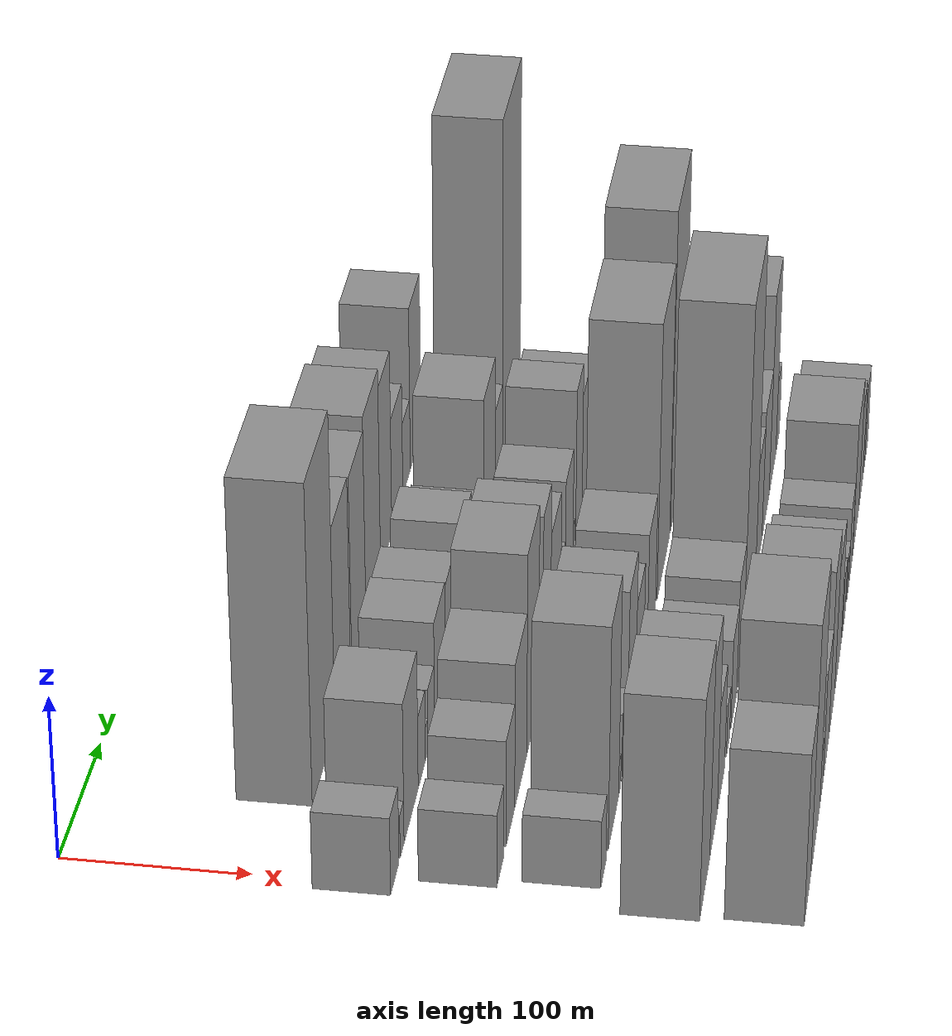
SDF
<sdf version="1.6">
 <world name="default">
  <model name="building_27">
   <static>1</static>
   <pose>100.0000 95.9631 0 0.000000 0.000000 0.000000</pose>
   <link name="link">
    <pose>0 0 99.00 0 0 0</pose>
    <collision name="collision"><geometry><box><size>40.0000 69.5549 198.0000</size></box></geometry></collision>
    <visual name="visual">
     <cast_shadows>0</cast_shadows>
     <geometry><box><size>40.0000 69.5549 198.0000</size></box></geometry>
     <material>
      <script>
       <uri>model://grey_wall/materials/scripts</uri>
       <uri>model://grey_wall/materials/textures</uri>
       <name>vrc/grey_wall</name>
      </script>
     </material>
    </visual>
   </link>
  </model>
  <model name="building_28">
   <static>1</static>
   <pose>100.0000 155.8747 0 0.000000 0.000000 0.000000</pose>
   <link name="link">
    <pose>0 0 63.00 0 0 0</pose>
    <collision name="collision"><geometry><box><size>40.0000 50.2684 126.0000</size></box></geometry></collision>
    <visual name="visual">
     <cast_shadows>0</cast_shadows>
     <geometry><box><size>40.0000 50.2684 126.0000</size></box></geometry>
     <material>
      <script>
       <uri>model://grey_wall/materials/scripts</uri>
       <uri>model://grey_wall/materials/textures</uri>
       <name>vrc/grey_wall</name>
      </script>
     </material>
    </visual>
   </link>
  </model>
  <model name="building_29">
   <static>1</static>
   <pose>100.0000 208.4547 0 0.000000 0.000000 0.000000</pose>
   <link name="link">
    <pose>0 0 61.50 0 0 0</pose>
    <collision name="collision"><geometry><box><size>40.0000 46.8915 123.0000</size></box></geometry></collision>
    <visual name="visual">
     <cast_shadows>0</cast_shadows>
     <geometry><box><size>40.0000 46.8915 123.0000</size></box></geometry>
     <material>
      <script>
       <uri>model://grey_wall/materials/scripts</uri>
       <uri>model://grey_wall/materials/textures</uri>
       <name>vrc/grey_wall</name>
      </script>
     </material>
    </visual>
   </link>
  </model>
  <model name="building_30">
   <static>1</static>
   <pose>100.0000 256.9549 0 0.000000 0.000000 0.000000</pose>
   <link name="link">
    <pose>0 0 66.00 0 0 0</pose>
    <collision name="collision"><geometry><box><size>40.0000 50.1088 132.0000</size></box></geometry></collision>
    <visual name="visual">
     <cast_shadows>0</cast_shadows>
     <geometry><box><size>40.0000 50.1088 132.0000</size></box></geometry>
     <material>
      <script>
       <uri>model://grey_wall/materials/scripts</uri>
       <uri>model://grey_wall/materials/textures</uri>
       <name>vrc/grey_wall</name>
      </script>
     </material>
    </visual>
   </link>
  </model>
  <model name="building_31">
   <static>1</static>
   <pose>100.0000 301.8490 0 0.000000 0.000000 0.000000</pose>
   <link name="link">
    <pose>0 0 60.00 0 0 0</pose>
    <collision name="collision"><geometry><box><size>40.0000 39.6795 120.0000</size></box></geometry></collision>
    <visual name="visual">
     <cast_shadows>0</cast_shadows>
     <geometry><box><size>40.0000 39.6795 120.0000</size></box></geometry>
     <material>
      <script>
       <uri>model://grey_wall/materials/scripts</uri>
       <uri>model://grey_wall/materials/textures</uri>
       <name>vrc/grey_wall</name>
      </script>
     </material>
    </visual>
   </link>
  </model>
  <model name="building_32">
   <static>1</static>
   <pose>100.0000 341.5199 0 0.000000 0.000000 0.000000</pose>
   <link name="link">
    <pose>0 0 37.50 0 0 0</pose>
    <collision name="collision"><geometry><box><size>40.0000 39.6623 75.0000</size></box></geometry></collision>
    <visual name="visual">
     <cast_shadows>0</cast_shadows>
     <geometry><box><size>40.0000 39.6623 75.0000</size></box></geometry>
     <material>
      <script>
       <uri>model://grey_wall/materials/scripts</uri>
       <uri>model://grey_wall/materials/textures</uri>
       <name>vrc/grey_wall</name>
      </script>
     </material>
    </visual>
   </link>
  </model>
  <model name="building_33">
   <static>1</static>
   <pose>100.0000 375.2627 0 0.000000 0.000000 0.000000</pose>
   <link name="link">
    <pose>0 0 24.00 0 0 0</pose>
    <collision name="collision"><geometry><box><size>40.0000 27.8233 48.0000</size></box></geometry></collision>
    <visual name="visual">
     <cast_shadows>0</cast_shadows>
     <geometry><box><size>40.0000 27.8233 48.0000</size></box></geometry>
     <material>
      <script>
       <uri>model://grey_wall/materials/scripts</uri>
       <uri>model://grey_wall/materials/textures</uri>
       <name>vrc/grey_wall</name>
      </script>
     </material>
    </visual>
   </link>
  </model>
  <model name="building_34">
   <static>1</static>
   <pose>100.0000 409.2734 0 0.000000 0.000000 0.000000</pose>
   <link name="link">
    <pose>0 0 54.00 0 0 0</pose>
    <collision name="collision"><geometry><box><size>40.0000 40.1979 108.0000</size></box></geometry></collision>
    <visual name="visual">
     <cast_shadows>0</cast_shadows>
     <geometry><box><size>40.0000 40.1979 108.0000</size></box></geometry>
     <material>
      <script>
       <uri>model://grey_wall/materials/scripts</uri>
       <uri>model://grey_wall/materials/textures</uri>
       <name>vrc/grey_wall</name>
      </script>
     </material>
    </visual>
   </link>
  </model>
  <model name="building_35">
   <static>1</static>
   <pose>100.0000 438.1028 0 0.000000 0.000000 0.000000</pose>
   <link name="link">
    <pose>0 0 13.50 0 0 0</pose>
    <collision name="collision"><geometry><box><size>40.0000 11.4611 27.0000</size></box></geometry></collision>
    <visual name="visual">
     <cast_shadows>0</cast_shadows>
     <geometry><box><size>40.0000 11.4611 27.0000</size></box></geometry>
     <material>
      <script>
       <uri>model://grey_wall/materials/scripts</uri>
       <uri>model://grey_wall/materials/textures</uri>
       <name>vrc/grey_wall</name>
      </script>
     </material>
    </visual>
   </link>
  </model>
  <model name="building_71">
   <static>1</static>
   <pose>152.0000 6.1775 0 0.000000 0.000000 0.000000</pose>
   <link name="link">
    <pose>0 0 24.00 0 0 0</pose>
    <collision name="collision"><geometry><box><size>40.0000 26.8352 48.0000</size></box></geometry></collision>
    <visual name="visual">
     <cast_shadows>0</cast_shadows>
     <geometry><box><size>40.0000 26.8352 48.0000</size></box></geometry>
     <material>
      <script>
       <uri>model://grey_wall/materials/scripts</uri>
       <uri>model://grey_wall/materials/textures</uri>
       <name>vrc/grey_wall</name>
      </script>
     </material>
    </visual>
   </link>
  </model>
  <model name="building_72">
   <static>1</static>
   <pose>152.0000 29.9495 0 0.000000 0.000000 0.000000</pose>
   <link name="link">
    <pose>0 0 13.50 0 0 0</pose>
    <collision name="collision"><geometry><box><size>40.0000 12.7089 27.0000</size></box></geometry></collision>
    <visual name="visual">
     <cast_shadows>0</cast_shadows>
     <geometry><box><size>40.0000 12.7089 27.0000</size></box></geometry>
     <material>
      <script>
       <uri>model://grey_wall/materials/scripts</uri>
       <uri>model://grey_wall/materials/textures</uri>
       <name>vrc/grey_wall</name>
      </script>
     </material>
    </visual>
   </link>
  </model>
  <model name="building_73">
   <static>1</static>
   <pose>152.0000 59.8912 0 0.000000 0.000000 0.000000</pose>
   <link name="link">
    <pose>0 0 43.50 0 0 0</pose>
    <collision name="collision"><geometry><box><size>40.0000 47.1745 87.0000</size></box></geometry></collision>
    <visual name="visual">
     <cast_shadows>0</cast_shadows>
     <geometry><box><size>40.0000 47.1745 87.0000</size></box></geometry>
     <material>
      <script>
       <uri>model://grey_wall/materials/scripts</uri>
       <uri>model://grey_wall/materials/textures</uri>
       <name>vrc/grey_wall</name>
      </script>
     </material>
    </visual>
   </link>
  </model>
  <model name="building_74">
   <static>1</static>
   <pose>152.0000 95.9949 0 0.000000 0.000000 0.000000</pose>
   <link name="link">
    <pose>0 0 22.50 0 0 0</pose>
    <collision name="collision"><geometry><box><size>40.0000 25.0328 45.0000</size></box></geometry></collision>
    <visual name="visual">
     <cast_shadows>0</cast_shadows>
     <geometry><box><size>40.0000 25.0328 45.0000</size></box></geometry>
     <material>
      <script>
       <uri>model://grey_wall/materials/scripts</uri>
       <uri>model://grey_wall/materials/textures</uri>
       <name>vrc/grey_wall</name>
      </script>
     </material>
    </visual>
   </link>
  </model>
  <model name="building_75">
   <static>1</static>
   <pose>152.0000 112.9898 0 0.000000 0.000000 0.000000</pose>
   <link name="link">
    <pose>0 0 10.50 0 0 0</pose>
    <collision name="collision"><geometry><box><size>40.0000 8.9571 21.0000</size></box></geometry></collision>
    <visual name="visual">
     <cast_shadows>0</cast_shadows>
     <geometry><box><size>40.0000 8.9571 21.0000</size></box></geometry>
     <material>
      <script>
       <uri>model://grey_wall/materials/scripts</uri>
       <uri>model://grey_wall/materials/textures</uri>
       <name>vrc/grey_wall</name>
      </script>
     </material>
    </visual>
   </link>
  </model>
  <model name="building_76">
   <static>1</static>
   <pose>152.0000 128.7199 0 0.000000 0.000000 0.000000</pose>
   <link name="link">
    <pose>0 0 19.50 0 0 0</pose>
    <collision name="collision"><geometry><box><size>40.0000 22.5031 39.0000</size></box></geometry></collision>
    <visual name="visual">
     <cast_shadows>0</cast_shadows>
     <geometry><box><size>40.0000 22.5031 39.0000</size></box></geometry>
     <material>
      <script>
       <uri>model://grey_wall/materials/scripts</uri>
       <uri>model://grey_wall/materials/textures</uri>
       <name>vrc/grey_wall</name>
      </script>
     </material>
    </visual>
   </link>
  </model>
  <model name="building_77">
   <static>1</static>
   <pose>152.0000 159.2453 0 0.000000 0.000000 0.000000</pose>
   <link name="link">
    <pose>0 0 33.00 0 0 0</pose>
    <collision name="collision"><geometry><box><size>40.0000 38.5477 66.0000</size></box></geometry></collision>
    <visual name="visual">
     <cast_shadows>0</cast_shadows>
     <geometry><box><size>40.0000 38.5477 66.0000</size></box></geometry>
     <material>
      <script>
       <uri>model://grey_wall/materials/scripts</uri>
       <uri>model://grey_wall/materials/textures</uri>
       <name>vrc/grey_wall</name>
      </script>
     </material>
    </visual>
   </link>
  </model>
  <model name="building_78">
   <static>1</static>
   <pose>152.0000 195.8026 0 0.000000 0.000000 0.000000</pose>
   <link name="link">
    <pose>0 0 31.50 0 0 0</pose>
    <collision name="collision"><geometry><box><size>40.0000 34.5670 63.0000</size></box></geometry></collision>
    <visual name="visual">
     <cast_shadows>0</cast_shadows>
     <geometry><box><size>40.0000 34.5670 63.0000</size></box></geometry>
     <material>
      <script>
       <uri>model://grey_wall/materials/scripts</uri>
       <uri>model://grey_wall/materials/textures</uri>
       <name>vrc/grey_wall</name>
      </script>
     </material>
    </visual>
   </link>
  </model>
  <model name="building_79">
   <static>1</static>
   <pose>152.0000 224.5980 0 0.000000 0.000000 0.000000</pose>
   <link name="link">
    <pose>0 0 19.50 0 0 0</pose>
    <collision name="collision"><geometry><box><size>40.0000 23.0237 39.0000</size></box></geometry></collision>
    <visual name="visual">
     <cast_shadows>0</cast_shadows>
     <geometry><box><size>40.0000 23.0237 39.0000</size></box></geometry>
     <material>
      <script>
       <uri>model://grey_wall/materials/scripts</uri>
       <uri>model://grey_wall/materials/textures</uri>
       <name>vrc/grey_wall</name>
      </script>
     </material>
    </visual>
   </link>
  </model>
  <model name="building_80">
   <static>1</static>
   <pose>152.0000 261.7956 0 0.000000 0.000000 0.000000</pose>
   <link name="link">
    <pose>0 0 30.00 0 0 0</pose>
    <collision name="collision"><geometry><box><size>40.0000 33.3714 60.0000</size></box></geometry></collision>
    <visual name="visual">
     <cast_shadows>0</cast_shadows>
     <geometry><box><size>40.0000 33.3714 60.0000</size></box></geometry>
     <material>
      <script>
       <uri>model://grey_wall/materials/scripts</uri>
       <uri>model://grey_wall/materials/textures</uri>
       <name>vrc/grey_wall</name>
      </script>
     </material>
    </visual>
   </link>
  </model>
  <model name="building_81">
   <static>1</static>
   <pose>152.0000 289.0990 0 0.000000 0.000000 0.000000</pose>
   <link name="link">
    <pose>0 0 10.50 0 0 0</pose>
    <collision name="collision"><geometry><box><size>40.0000 9.2353 21.0000</size></box></geometry></collision>
    <visual name="visual">
     <cast_shadows>0</cast_shadows>
     <geometry><box><size>40.0000 9.2353 21.0000</size></box></geometry>
     <material>
      <script>
       <uri>model://grey_wall/materials/scripts</uri>
       <uri>model://grey_wall/materials/textures</uri>
       <name>vrc/grey_wall</name>
      </script>
     </material>
    </visual>
   </link>
  </model>
  <model name="building_82">
   <static>1</static>
   <pose>152.0000 307.6373 0 0.000000 0.000000 0.000000</pose>
   <link name="link">
    <pose>0 0 18.00 0 0 0</pose>
    <collision name="collision"><geometry><box><size>40.0000 19.8414 36.0000</size></box></geometry></collision>
    <visual name="visual">
     <cast_shadows>0</cast_shadows>
     <geometry><box><size>40.0000 19.8414 36.0000</size></box></geometry>
     <material>
      <script>
       <uri>model://grey_wall/materials/scripts</uri>
       <uri>model://grey_wall/materials/textures</uri>
       <name>vrc/grey_wall</name>
      </script>
     </material>
    </visual>
   </link>
  </model>
  <model name="building_83">
   <static>1</static>
   <pose>152.0000 349.2257 0 0.000000 0.000000 0.000000</pose>
   <link name="link">
    <pose>0 0 45.00 0 0 0</pose>
    <collision name="collision"><geometry><box><size>40.0000 47.3353 90.0000</size></box></geometry></collision>
    <visual name="visual">
     <cast_shadows>0</cast_shadows>
     <geometry><box><size>40.0000 47.3353 90.0000</size></box></geometry>
     <material>
      <script>
       <uri>model://grey_wall/materials/scripts</uri>
       <uri>model://grey_wall/materials/textures</uri>
       <name>vrc/grey_wall</name>
      </script>
     </material>
    </visual>
   </link>
  </model>
  <model name="building_84">
   <static>1</static>
   <pose>152.0000 388.0478 0 0.000000 0.000000 0.000000</pose>
   <link name="link">
    <pose>0 0 27.00 0 0 0</pose>
    <collision name="collision"><geometry><box><size>40.0000 30.3090 54.0000</size></box></geometry></collision>
    <visual name="visual">
     <cast_shadows>0</cast_shadows>
     <geometry><box><size>40.0000 30.3090 54.0000</size></box></geometry>
     <material>
      <script>
       <uri>model://grey_wall/materials/scripts</uri>
       <uri>model://grey_wall/materials/textures</uri>
       <name>vrc/grey_wall</name>
      </script>
     </material>
    </visual>
   </link>
  </model>
  <model name="building_85">
   <static>1</static>
   <pose>152.0000 441.4528 0 0.000000 0.000000 0.000000</pose>
   <link name="link">
    <pose>0 0 112.50 0 0 0</pose>
    <collision name="collision"><geometry><box><size>40.0000 76.5010 225.0000</size></box></geometry></collision>
    <visual name="visual">
     <cast_shadows>0</cast_shadows>
     <geometry><box><size>40.0000 76.5010 225.0000</size></box></geometry>
     <material>
      <script>
       <uri>model://grey_wall/materials/scripts</uri>
       <uri>model://grey_wall/materials/textures</uri>
       <name>vrc/grey_wall</name>
      </script>
     </material>
    </visual>
   </link>
  </model>
  <model name="building_125">
   <static>1</static>
   <pose>204.0000 19.5991 0 0.000000 0.000000 0.000000</pose>
   <link name="link">
    <pose>0 0 22.50 0 0 0</pose>
    <collision name="collision"><geometry><box><size>40.0000 26.1859 45.0000</size></box></geometry></collision>
    <visual name="visual">
     <cast_shadows>0</cast_shadows>
     <geometry><box><size>40.0000 26.1859 45.0000</size></box></geometry>
     <material>
      <script>
       <uri>model://grey_wall/materials/scripts</uri>
       <uri>model://grey_wall/materials/textures</uri>
       <name>vrc/grey_wall</name>
      </script>
     </material>
    </visual>
   </link>
  </model>
  <model name="building_126">
   <static>1</static>
   <pose>204.0000 57.2526 0 0.000000 0.000000 0.000000</pose>
   <link name="link">
    <pose>0 0 33.00 0 0 0</pose>
    <collision name="collision"><geometry><box><size>40.0000 33.1210 66.0000</size></box></geometry></collision>
    <visual name="visual">
     <cast_shadows>0</cast_shadows>
     <geometry><box><size>40.0000 33.1210 66.0000</size></box></geometry>
     <material>
      <script>
       <uri>model://grey_wall/materials/scripts</uri>
       <uri>model://grey_wall/materials/textures</uri>
       <name>vrc/grey_wall</name>
      </script>
     </material>
    </visual>
   </link>
  </model>
  <model name="building_127">
   <static>1</static>
   <pose>204.0000 97.2306 0 0.000000 0.000000 0.000000</pose>
   <link name="link">
    <pose>0 0 45.00 0 0 0</pose>
    <collision name="collision"><geometry><box><size>40.0000 46.8351 90.0000</size></box></geometry></collision>
    <visual name="visual">
     <cast_shadows>0</cast_shadows>
     <geometry><box><size>40.0000 46.8351 90.0000</size></box></geometry>
     <material>
      <script>
       <uri>model://grey_wall/materials/scripts</uri>
       <uri>model://grey_wall/materials/textures</uri>
       <name>vrc/grey_wall</name>
      </script>
     </material>
    </visual>
   </link>
  </model>
  <model name="building_128">
   <static>1</static>
   <pose>204.0000 144.5070 0 0.000000 0.000000 0.000000</pose>
   <link name="link">
    <pose>0 0 63.00 0 0 0</pose>
    <collision name="collision"><geometry><box><size>40.0000 47.7177 126.0000</size></box></geometry></collision>
    <visual name="visual">
     <cast_shadows>0</cast_shadows>
     <geometry><box><size>40.0000 47.7177 126.0000</size></box></geometry>
     <material>
      <script>
       <uri>model://grey_wall/materials/scripts</uri>
       <uri>model://grey_wall/materials/textures</uri>
       <name>vrc/grey_wall</name>
      </script>
     </material>
    </visual>
   </link>
  </model>
  <model name="building_129">
   <static>1</static>
   <pose>204.0000 178.7596 0 0.000000 0.000000 0.000000</pose>
   <link name="link">
    <pose>0 0 13.50 0 0 0</pose>
    <collision name="collision"><geometry><box><size>40.0000 12.7875 27.0000</size></box></geometry></collision>
    <visual name="visual">
     <cast_shadows>0</cast_shadows>
     <geometry><box><size>40.0000 12.7875 27.0000</size></box></geometry>
     <material>
      <script>
       <uri>model://grey_wall/materials/scripts</uri>
       <uri>model://grey_wall/materials/textures</uri>
       <name>vrc/grey_wall</name>
      </script>
     </material>
    </visual>
   </link>
  </model>
  <model name="building_130">
   <static>1</static>
   <pose>204.0000 201.4827 0 0.000000 0.000000 0.000000</pose>
   <link name="link">
    <pose>0 0 54.00 0 0 0</pose>
    <collision name="collision"><geometry><box><size>40.0000 32.6587 108.0000</size></box></geometry></collision>
    <visual name="visual">
     <cast_shadows>0</cast_shadows>
     <geometry><box><size>40.0000 32.6587 108.0000</size></box></geometry>
     <material>
      <script>
       <uri>model://grey_wall/materials/scripts</uri>
       <uri>model://grey_wall/materials/textures</uri>
       <name>vrc/grey_wall</name>
      </script>
     </material>
    </visual>
   </link>
  </model>
  <model name="building_131">
   <static>1</static>
   <pose>204.0000 239.6755 0 0.000000 0.000000 0.000000</pose>
   <link name="link">
    <pose>0 0 37.50 0 0 0</pose>
    <collision name="collision"><geometry><box><size>40.0000 43.7267 75.0000</size></box></geometry></collision>
    <visual name="visual">
     <cast_shadows>0</cast_shadows>
     <geometry><box><size>40.0000 43.7267 75.0000</size></box></geometry>
     <material>
      <script>
       <uri>model://grey_wall/materials/scripts</uri>
       <uri>model://grey_wall/materials/textures</uri>
       <name>vrc/grey_wall</name>
      </script>
     </material>
    </visual>
   </link>
  </model>
  <model name="building_132">
   <static>1</static>
   <pose>204.0000 273.3717 0 0.000000 0.000000 0.000000</pose>
   <link name="link">
    <pose>0 0 15.00 0 0 0</pose>
    <collision name="collision"><geometry><box><size>40.0000 15.6657 30.0000</size></box></geometry></collision>
    <visual name="visual">
     <cast_shadows>0</cast_shadows>
     <geometry><box><size>40.0000 15.6657 30.0000</size></box></geometry>
     <material>
      <script>
       <uri>model://grey_wall/materials/scripts</uri>
       <uri>model://grey_wall/materials/textures</uri>
       <name>vrc/grey_wall</name>
      </script>
     </material>
    </visual>
   </link>
  </model>
  <model name="building_133">
   <static>1</static>
   <pose>204.0000 298.4647 0 0.000000 0.000000 0.000000</pose>
   <link name="link">
    <pose>0 0 34.50 0 0 0</pose>
    <collision name="collision"><geometry><box><size>40.0000 34.5203 69.0000</size></box></geometry></collision>
    <visual name="visual">
     <cast_shadows>0</cast_shadows>
     <geometry><box><size>40.0000 34.5203 69.0000</size></box></geometry>
     <material>
      <script>
       <uri>model://grey_wall/materials/scripts</uri>
       <uri>model://grey_wall/materials/textures</uri>
       <name>vrc/grey_wall</name>
      </script>
     </material>
    </visual>
   </link>
  </model>
  <model name="building_134">
   <static>1</static>
   <pose>204.0000 319.7799 0 0.000000 0.000000 0.000000</pose>
   <link name="link">
    <pose>0 0 9.00 0 0 0</pose>
    <collision name="collision"><geometry><box><size>40.0000 8.1100 18.0000</size></box></geometry></collision>
    <visual name="visual">
     <cast_shadows>0</cast_shadows>
     <geometry><box><size>40.0000 8.1100 18.0000</size></box></geometry>
     <material>
      <script>
       <uri>model://grey_wall/materials/scripts</uri>
       <uri>model://grey_wall/materials/textures</uri>
       <name>vrc/grey_wall</name>
      </script>
     </material>
    </visual>
   </link>
  </model>
  <model name="building_135">
   <static>1</static>
   <pose>204.0000 342.7902 0 0.000000 0.000000 0.000000</pose>
   <link name="link">
    <pose>0 0 49.50 0 0 0</pose>
    <collision name="collision"><geometry><box><size>40.0000 29.9105 99.0000</size></box></geometry></collision>
    <visual name="visual">
     <cast_shadows>0</cast_shadows>
     <geometry><box><size>40.0000 29.9105 99.0000</size></box></geometry>
     <material>
      <script>
       <uri>model://grey_wall/materials/scripts</uri>
       <uri>model://grey_wall/materials/textures</uri>
       <name>vrc/grey_wall</name>
      </script>
     </material>
    </visual>
   </link>
  </model>
  <model name="building_136">
   <static>1</static>
   <pose>204.0000 380.8406 0 0.000000 0.000000 0.000000</pose>
   <link name="link">
    <pose>0 0 39.00 0 0 0</pose>
    <collision name="collision"><geometry><box><size>40.0000 46.1903 78.0000</size></box></geometry></collision>
    <visual name="visual">
     <cast_shadows>0</cast_shadows>
     <geometry><box><size>40.0000 46.1903 78.0000</size></box></geometry>
     <material>
      <script>
       <uri>model://grey_wall/materials/scripts</uri>
       <uri>model://grey_wall/materials/textures</uri>
       <name>vrc/grey_wall</name>
      </script>
     </material>
    </visual>
   </link>
  </model>
  <model name="building_137">
   <static>1</static>
   <pose>204.0000 422.7419 0 0.000000 0.000000 0.000000</pose>
   <link name="link">
    <pose>0 0 19.50 0 0 0</pose>
    <collision name="collision"><geometry><box><size>40.0000 19.6123 39.0000</size></box></geometry></collision>
    <visual name="visual">
     <cast_shadows>0</cast_shadows>
     <geometry><box><size>40.0000 19.6123 39.0000</size></box></geometry>
     <material>
      <script>
       <uri>model://grey_wall/materials/scripts</uri>
       <uri>model://grey_wall/materials/textures</uri>
       <name>vrc/grey_wall</name>
      </script>
     </material>
    </visual>
   </link>
  </model>
  <model name="building_171">
   <static>1</static>
   <pose>256.0000 24.4122 0 0.000000 0.000000 0.000000</pose>
   <link name="link">
    <pose>0 0 21.00 0 0 0</pose>
    <collision name="collision"><geometry><box><size>40.0000 22.5740 42.0000</size></box></geometry></collision>
    <visual name="visual">
     <cast_shadows>0</cast_shadows>
     <geometry><box><size>40.0000 22.5740 42.0000</size></box></geometry>
     <material>
      <script>
       <uri>model://grey_wall/materials/scripts</uri>
       <uri>model://grey_wall/materials/textures</uri>
       <name>vrc/grey_wall</name>
      </script>
     </material>
    </visual>
   </link>
  </model>
  <model name="building_172">
   <static>1</static>
   <pose>256.0000 68.0506 0 0.000000 0.000000 0.000000</pose>
   <link name="link">
    <pose>0 0 69.00 0 0 0</pose>
    <collision name="collision"><geometry><box><size>40.0000 46.7029 138.0000</size></box></geometry></collision>
    <visual name="visual">
     <cast_shadows>0</cast_shadows>
     <geometry><box><size>40.0000 46.7029 138.0000</size></box></geometry>
     <material>
      <script>
       <uri>model://grey_wall/materials/scripts</uri>
       <uri>model://grey_wall/materials/textures</uri>
       <name>vrc/grey_wall</name>
      </script>
     </material>
    </visual>
   </link>
  </model>
  <model name="building_173">
   <static>1</static>
   <pose>256.0000 95.7640 0 0.000000 0.000000 0.000000</pose>
   <link name="link">
    <pose>0 0 10.50 0 0 0</pose>
    <collision name="collision"><geometry><box><size>40.0000 8.7239 21.0000</size></box></geometry></collision>
    <visual name="visual">
     <cast_shadows>0</cast_shadows>
     <geometry><box><size>40.0000 8.7239 21.0000</size></box></geometry>
     <material>
      <script>
       <uri>model://grey_wall/materials/scripts</uri>
       <uri>model://grey_wall/materials/textures</uri>
       <name>vrc/grey_wall</name>
      </script>
     </material>
    </visual>
   </link>
  </model>
  <model name="building_174">
   <static>1</static>
   <pose>256.0000 117.5075 0 0.000000 0.000000 0.000000</pose>
   <link name="link">
    <pose>0 0 21.00 0 0 0</pose>
    <collision name="collision"><geometry><box><size>40.0000 24.7632 42.0000</size></box></geometry></collision>
    <visual name="visual">
     <cast_shadows>0</cast_shadows>
     <geometry><box><size>40.0000 24.7632 42.0000</size></box></geometry>
     <material>
      <script>
       <uri>model://grey_wall/materials/scripts</uri>
       <uri>model://grey_wall/materials/textures</uri>
       <name>vrc/grey_wall</name>
      </script>
     </material>
    </visual>
   </link>
  </model>
  <model name="building_175">
   <static>1</static>
   <pose>256.0000 149.0656 0 0.000000 0.000000 0.000000</pose>
   <link name="link">
    <pose>0 0 51.00 0 0 0</pose>
    <collision name="collision"><geometry><box><size>40.0000 38.3529 102.0000</size></box></geometry></collision>
    <visual name="visual">
     <cast_shadows>0</cast_shadows>
     <geometry><box><size>40.0000 38.3529 102.0000</size></box></geometry>
     <material>
      <script>
       <uri>model://grey_wall/materials/scripts</uri>
       <uri>model://grey_wall/materials/textures</uri>
       <name>vrc/grey_wall</name>
      </script>
     </material>
    </visual>
   </link>
  </model>
  <model name="building_176">
   <static>1</static>
   <pose>256.0000 187.8354 0 0.000000 0.000000 0.000000</pose>
   <link name="link">
    <pose>0 0 34.50 0 0 0</pose>
    <collision name="collision"><geometry><box><size>40.0000 39.1867 69.0000</size></box></geometry></collision>
    <visual name="visual">
     <cast_shadows>0</cast_shadows>
     <geometry><box><size>40.0000 39.1867 69.0000</size></box></geometry>
     <material>
      <script>
       <uri>model://grey_wall/materials/scripts</uri>
       <uri>model://grey_wall/materials/textures</uri>
       <name>vrc/grey_wall</name>
      </script>
     </material>
    </visual>
   </link>
  </model>
  <model name="building_177">
   <static>1</static>
   <pose>256.0000 216.4188 0 0.000000 0.000000 0.000000</pose>
   <link name="link">
    <pose>0 0 13.50 0 0 0</pose>
    <collision name="collision"><geometry><box><size>40.0000 11.9801 27.0000</size></box></geometry></collision>
    <visual name="visual">
     <cast_shadows>0</cast_shadows>
     <geometry><box><size>40.0000 11.9801 27.0000</size></box></geometry>
     <material>
      <script>
       <uri>model://grey_wall/materials/scripts</uri>
       <uri>model://grey_wall/materials/textures</uri>
       <name>vrc/grey_wall</name>
      </script>
     </material>
    </visual>
   </link>
  </model>
  <model name="building_178">
   <static>1</static>
   <pose>256.0000 246.1983 0 0.000000 0.000000 0.000000</pose>
   <link name="link">
    <pose>0 0 37.50 0 0 0</pose>
    <collision name="collision"><geometry><box><size>40.0000 41.5788 75.0000</size></box></geometry></collision>
    <visual name="visual">
     <cast_shadows>0</cast_shadows>
     <geometry><box><size>40.0000 41.5788 75.0000</size></box></geometry>
     <material>
      <script>
       <uri>model://grey_wall/materials/scripts</uri>
       <uri>model://grey_wall/materials/textures</uri>
       <name>vrc/grey_wall</name>
      </script>
     </material>
    </visual>
   </link>
  </model>
  <model name="building_179">
   <static>1</static>
   <pose>256.0000 308.0925 0 0.000000 0.000000 0.000000</pose>
   <link name="link">
    <pose>0 0 88.50 0 0 0</pose>
    <collision name="collision"><geometry><box><size>40.0000 66.2096 177.0000</size></box></geometry></collision>
    <visual name="visual">
     <cast_shadows>0</cast_shadows>
     <geometry><box><size>40.0000 66.2096 177.0000</size></box></geometry>
     <material>
      <script>
       <uri>model://grey_wall/materials/scripts</uri>
       <uri>model://grey_wall/materials/textures</uri>
       <name>vrc/grey_wall</name>
      </script>
     </material>
    </visual>
   </link>
  </model>
  <model name="building_180">
   <static>1</static>
   <pose>256.0000 381.2448 0 0.000000 0.000000 0.000000</pose>
   <link name="link">
    <pose>0 0 103.50 0 0 0</pose>
    <collision name="collision"><geometry><box><size>40.0000 72.0952 207.0000</size></box></geometry></collision>
    <visual name="visual">
     <cast_shadows>0</cast_shadows>
     <geometry><box><size>40.0000 72.0952 207.0000</size></box></geometry>
     <material>
      <script>
       <uri>model://grey_wall/materials/scripts</uri>
       <uri>model://grey_wall/materials/textures</uri>
       <name>vrc/grey_wall</name>
      </script>
     </material>
    </visual>
   </link>
  </model>
  <model name="building_181">
   <static>1</static>
   <pose>256.0000 420.8644 0 0.000000 0.000000 0.000000</pose>
   <link name="link">
    <pose>0 0 7.50 0 0 0</pose>
    <collision name="collision"><geometry><box><size>40.0000 7.1439 15.0000</size></box></geometry></collision>
    <visual name="visual">
     <cast_shadows>0</cast_shadows>
     <geometry><box><size>40.0000 7.1439 15.0000</size></box></geometry>
     <material>
      <script>
       <uri>model://grey_wall/materials/scripts</uri>
       <uri>model://grey_wall/materials/textures</uri>
       <name>vrc/grey_wall</name>
      </script>
     </material>
    </visual>
   </link>
  </model>
  <model name="building_182">
   <static>1</static>
   <pose>256.0000 448.9622 0 0.000000 0.000000 0.000000</pose>
   <link name="link">
    <pose>0 0 54.00 0 0 0</pose>
    <collision name="collision"><geometry><box><size>40.0000 37.0516 108.0000</size></box></geometry></collision>
    <visual name="visual">
     <cast_shadows>0</cast_shadows>
     <geometry><box><size>40.0000 37.0516 108.0000</size></box></geometry>
     <material>
      <script>
       <uri>model://grey_wall/materials/scripts</uri>
       <uri>model://grey_wall/materials/textures</uri>
       <name>vrc/grey_wall</name>
      </script>
     </material>
    </visual>
   </link>
  </model>
  <model name="building_223">
   <static>1</static>
   <pose>308.0000 19.2251 0 0.000000 0.000000 0.000000</pose>
   <link name="link">
    <pose>0 0 67.50 0 0 0</pose>
    <collision name="collision"><geometry><box><size>40.0000 51.1057 135.0000</size></box></geometry></collision>
    <visual name="visual">
     <cast_shadows>0</cast_shadows>
     <geometry><box><size>40.0000 51.1057 135.0000</size></box></geometry>
     <material>
      <script>
       <uri>model://grey_wall/materials/scripts</uri>
       <uri>model://grey_wall/materials/textures</uri>
       <name>vrc/grey_wall</name>
      </script>
     </material>
    </visual>
   </link>
  </model>
  <model name="building_224">
   <static>1</static>
   <pose>308.0000 64.7984 0 0.000000 0.000000 0.000000</pose>
   <link name="link">
    <pose>0 0 61.50 0 0 0</pose>
    <collision name="collision"><geometry><box><size>40.0000 40.0409 123.0000</size></box></geometry></collision>
    <visual name="visual">
     <cast_shadows>0</cast_shadows>
     <geometry><box><size>40.0000 40.0409 123.0000</size></box></geometry>
     <material>
      <script>
       <uri>model://grey_wall/materials/scripts</uri>
       <uri>model://grey_wall/materials/textures</uri>
       <name>vrc/grey_wall</name>
      </script>
     </material>
    </visual>
   </link>
  </model>
  <model name="building_225">
   <static>1</static>
   <pose>308.0000 104.2365 0 0.000000 0.000000 0.000000</pose>
   <link name="link">
    <pose>0 0 33.00 0 0 0</pose>
    <collision name="collision"><geometry><box><size>40.0000 38.8351 66.0000</size></box></geometry></collision>
    <visual name="visual">
     <cast_shadows>0</cast_shadows>
     <geometry><box><size>40.0000 38.8351 66.0000</size></box></geometry>
     <material>
      <script>
       <uri>model://grey_wall/materials/scripts</uri>
       <uri>model://grey_wall/materials/textures</uri>
       <name>vrc/grey_wall</name>
      </script>
     </material>
    </visual>
   </link>
  </model>
  <model name="building_226">
   <static>1</static>
   <pose>308.0000 142.4642 0 0.000000 0.000000 0.000000</pose>
   <link name="link">
    <pose>0 0 16.50 0 0 0</pose>
    <collision name="collision"><geometry><box><size>40.0000 17.6205 33.0000</size></box></geometry></collision>
    <visual name="visual">
     <cast_shadows>0</cast_shadows>
     <geometry><box><size>40.0000 17.6205 33.0000</size></box></geometry>
     <material>
      <script>
       <uri>model://grey_wall/materials/scripts</uri>
       <uri>model://grey_wall/materials/textures</uri>
       <name>vrc/grey_wall</name>
      </script>
     </material>
    </visual>
   </link>
  </model>
  <model name="building_227">
   <static>1</static>
   <pose>308.0000 175.2860 0 0.000000 0.000000 0.000000</pose>
   <link name="link">
    <pose>0 0 28.50 0 0 0</pose>
    <collision name="collision"><geometry><box><size>40.0000 34.0230 57.0000</size></box></geometry></collision>
    <visual name="visual">
     <cast_shadows>0</cast_shadows>
     <geometry><box><size>40.0000 34.0230 57.0000</size></box></geometry>
     <material>
      <script>
       <uri>model://grey_wall/materials/scripts</uri>
       <uri>model://grey_wall/materials/textures</uri>
       <name>vrc/grey_wall</name>
      </script>
     </material>
    </visual>
   </link>
  </model>
  <model name="building_228">
   <static>1</static>
   <pose>308.0000 211.3479 0 0.000000 0.000000 0.000000</pose>
   <link name="link">
    <pose>0 0 36.00 0 0 0</pose>
    <collision name="collision"><geometry><box><size>40.0000 38.1008 72.0000</size></box></geometry></collision>
    <visual name="visual">
     <cast_shadows>0</cast_shadows>
     <geometry><box><size>40.0000 38.1008 72.0000</size></box></geometry>
     <material>
      <script>
       <uri>model://grey_wall/materials/scripts</uri>
       <uri>model://grey_wall/materials/textures</uri>
       <name>vrc/grey_wall</name>
      </script>
     </material>
    </visual>
   </link>
  </model>
  <model name="building_229">
   <static>1</static>
   <pose>308.0000 267.2762 0 0.000000 0.000000 0.000000</pose>
   <link name="link">
    <pose>0 0 109.50 0 0 0</pose>
    <collision name="collision"><geometry><box><size>40.0000 73.7558 219.0000</size></box></geometry></collision>
    <visual name="visual">
     <cast_shadows>0</cast_shadows>
     <geometry><box><size>40.0000 73.7558 219.0000</size></box></geometry>
     <material>
      <script>
       <uri>model://grey_wall/materials/scripts</uri>
       <uri>model://grey_wall/materials/textures</uri>
       <name>vrc/grey_wall</name>
      </script>
     </material>
    </visual>
   </link>
  </model>
  <model name="building_230">
   <static>1</static>
   <pose>308.0000 324.2044 0 0.000000 0.000000 0.000000</pose>
   <link name="link">
    <pose>0 0 37.50 0 0 0</pose>
    <collision name="collision"><geometry><box><size>40.0000 40.1005 75.0000</size></box></geometry></collision>
    <visual name="visual">
     <cast_shadows>0</cast_shadows>
     <geometry><box><size>40.0000 40.1005 75.0000</size></box></geometry>
     <material>
      <script>
       <uri>model://grey_wall/materials/scripts</uri>
       <uri>model://grey_wall/materials/textures</uri>
       <name>vrc/grey_wall</name>
      </script>
     </material>
    </visual>
   </link>
  </model>
  <model name="building_231">
   <static>1</static>
   <pose>308.0000 367.5551 0 0.000000 0.000000 0.000000</pose>
   <link name="link">
    <pose>0 0 42.00 0 0 0</pose>
    <collision name="collision"><geometry><box><size>40.0000 46.6009 84.0000</size></box></geometry></collision>
    <visual name="visual">
     <cast_shadows>0</cast_shadows>
     <geometry><box><size>40.0000 46.6009 84.0000</size></box></geometry>
     <material>
      <script>
       <uri>model://grey_wall/materials/scripts</uri>
       <uri>model://grey_wall/materials/textures</uri>
       <name>vrc/grey_wall</name>
      </script>
     </material>
    </visual>
   </link>
  </model>
  <model name="building_232">
   <static>1</static>
   <pose>308.0000 413.4163 0 0.000000 0.000000 0.000000</pose>
   <link name="link">
    <pose>0 0 66.00 0 0 0</pose>
    <collision name="collision"><geometry><box><size>40.0000 45.1215 132.0000</size></box></geometry></collision>
    <visual name="visual">
     <cast_shadows>0</cast_shadows>
     <geometry><box><size>40.0000 45.1215 132.0000</size></box></geometry>
     <material>
      <script>
       <uri>model://grey_wall/materials/scripts</uri>
       <uri>model://grey_wall/materials/textures</uri>
       <name>vrc/grey_wall</name>
      </script>
     </material>
    </visual>
   </link>
  </model>
  <model name="building_233">
   <static>1</static>
   <pose>308.0000 448.1996 0 0.000000 0.000000 0.000000</pose>
   <link name="link">
    <pose>0 0 24.00 0 0 0</pose>
    <collision name="collision"><geometry><box><size>40.0000 24.4451 48.0000</size></box></geometry></collision>
    <visual name="visual">
     <cast_shadows>0</cast_shadows>
     <geometry><box><size>40.0000 24.4451 48.0000</size></box></geometry>
     <material>
      <script>
       <uri>model://grey_wall/materials/scripts</uri>
       <uri>model://grey_wall/materials/textures</uri>
       <name>vrc/grey_wall</name>
      </script>
     </material>
    </visual>
   </link>
  </model>
  <model name="building_272">
   <static>1</static>
   <pose>360.0000 17.8710 0 0.000000 0.000000 0.000000</pose>
   <link name="link">
    <pose>0 0 52.50 0 0 0</pose>
    <collision name="collision"><geometry><box><size>40.0000 41.6622 105.0000</size></box></geometry></collision>
    <visual name="visual">
     <cast_shadows>0</cast_shadows>
     <geometry><box><size>40.0000 41.6622 105.0000</size></box></geometry>
     <material>
      <script>
       <uri>model://grey_wall/materials/scripts</uri>
       <uri>model://grey_wall/materials/textures</uri>
       <name>vrc/grey_wall</name>
      </script>
     </material>
    </visual>
   </link>
  </model>
  <model name="building_273">
   <static>1</static>
   <pose>360.0000 68.4222 0 0.000000 0.000000 0.000000</pose>
   <link name="link">
    <pose>0 0 76.50 0 0 0</pose>
    <collision name="collision"><geometry><box><size>40.0000 59.4402 153.0000</size></box></geometry></collision>
    <visual name="visual">
     <cast_shadows>0</cast_shadows>
     <geometry><box><size>40.0000 59.4402 153.0000</size></box></geometry>
     <material>
      <script>
       <uri>model://grey_wall/materials/scripts</uri>
       <uri>model://grey_wall/materials/textures</uri>
       <name>vrc/grey_wall</name>
      </script>
     </material>
    </visual>
   </link>
  </model>
  <model name="building_274">
   <static>1</static>
   <pose>360.0000 108.0006 0 0.000000 0.000000 0.000000</pose>
   <link name="link">
    <pose>0 0 16.50 0 0 0</pose>
    <collision name="collision"><geometry><box><size>40.0000 19.7168 33.0000</size></box></geometry></collision>
    <visual name="visual">
     <cast_shadows>0</cast_shadows>
     <geometry><box><size>40.0000 19.7168 33.0000</size></box></geometry>
     <material>
      <script>
       <uri>model://grey_wall/materials/scripts</uri>
       <uri>model://grey_wall/materials/textures</uri>
       <name>vrc/grey_wall</name>
      </script>
     </material>
    </visual>
   </link>
  </model>
  <model name="building_275">
   <static>1</static>
   <pose>360.0000 138.3202 0 0.000000 0.000000 0.000000</pose>
   <link name="link">
    <pose>0 0 34.50 0 0 0</pose>
    <collision name="collision"><geometry><box><size>40.0000 40.9224 69.0000</size></box></geometry></collision>
    <visual name="visual">
     <cast_shadows>0</cast_shadows>
     <geometry><box><size>40.0000 40.9224 69.0000</size></box></geometry>
     <material>
      <script>
       <uri>model://grey_wall/materials/scripts</uri>
       <uri>model://grey_wall/materials/textures</uri>
       <name>vrc/grey_wall</name>
      </script>
     </material>
    </visual>
   </link>
  </model>
  <model name="building_276">
   <static>1</static>
   <pose>360.0000 179.1055 0 0.000000 0.000000 0.000000</pose>
   <link name="link">
    <pose>0 0 52.50 0 0 0</pose>
    <collision name="collision"><geometry><box><size>40.0000 40.6483 105.0000</size></box></geometry></collision>
    <visual name="visual">
     <cast_shadows>0</cast_shadows>
     <geometry><box><size>40.0000 40.6483 105.0000</size></box></geometry>
     <material>
      <script>
       <uri>model://grey_wall/materials/scripts</uri>
       <uri>model://grey_wall/materials/textures</uri>
       <name>vrc/grey_wall</name>
      </script>
     </material>
    </visual>
   </link>
  </model>
  <model name="building_277">
   <static>1</static>
   <pose>360.0000 222.8682 0 0.000000 0.000000 0.000000</pose>
   <link name="link">
    <pose>0 0 40.50 0 0 0</pose>
    <collision name="collision"><geometry><box><size>40.0000 46.8770 81.0000</size></box></geometry></collision>
    <visual name="visual">
     <cast_shadows>0</cast_shadows>
     <geometry><box><size>40.0000 46.8770 81.0000</size></box></geometry>
     <material>
      <script>
       <uri>model://grey_wall/materials/scripts</uri>
       <uri>model://grey_wall/materials/textures</uri>
       <name>vrc/grey_wall</name>
      </script>
     </material>
    </visual>
   </link>
  </model>
  <model name="building_278">
   <static>1</static>
   <pose>360.0000 251.4140 0 0.000000 0.000000 0.000000</pose>
   <link name="link">
    <pose>0 0 10.50 0 0 0</pose>
    <collision name="collision"><geometry><box><size>40.0000 10.2146 21.0000</size></box></geometry></collision>
    <visual name="visual">
     <cast_shadows>0</cast_shadows>
     <geometry><box><size>40.0000 10.2146 21.0000</size></box></geometry>
     <material>
      <script>
       <uri>model://grey_wall/materials/scripts</uri>
       <uri>model://grey_wall/materials/textures</uri>
       <name>vrc/grey_wall</name>
      </script>
     </material>
    </visual>
   </link>
  </model>
  <model name="building_279">
   <static>1</static>
   <pose>360.0000 266.9635 0 0.000000 0.000000 0.000000</pose>
   <link name="link">
    <pose>0 0 18.00 0 0 0</pose>
    <collision name="collision"><geometry><box><size>40.0000 20.8846 36.0000</size></box></geometry></collision>
    <visual name="visual">
     <cast_shadows>0</cast_shadows>
     <geometry><box><size>40.0000 20.8846 36.0000</size></box></geometry>
     <material>
      <script>
       <uri>model://grey_wall/materials/scripts</uri>
       <uri>model://grey_wall/materials/textures</uri>
       <name>vrc/grey_wall</name>
      </script>
     </material>
    </visual>
   </link>
  </model>
  <model name="building_280">
   <static>1</static>
   <pose>360.0000 295.5773 0 0.000000 0.000000 0.000000</pose>
   <link name="link">
    <pose>0 0 15.00 0 0 0</pose>
    <collision name="collision"><geometry><box><size>40.0000 16.3430 30.0000</size></box></geometry></collision>
    <visual name="visual">
     <cast_shadows>0</cast_shadows>
     <geometry><box><size>40.0000 16.3430 30.0000</size></box></geometry>
     <material>
      <script>
       <uri>model://grey_wall/materials/scripts</uri>
       <uri>model://grey_wall/materials/textures</uri>
       <name>vrc/grey_wall</name>
      </script>
     </material>
    </visual>
   </link>
  </model>
  <model name="building_281">
   <static>1</static>
   <pose>360.0000 317.1688 0 0.000000 0.000000 0.000000</pose>
   <link name="link">
    <pose>0 0 25.50 0 0 0</pose>
    <collision name="collision"><geometry><box><size>40.0000 26.8401 51.0000</size></box></geometry></collision>
    <visual name="visual">
     <cast_shadows>0</cast_shadows>
     <geometry><box><size>40.0000 26.8401 51.0000</size></box></geometry>
     <material>
      <script>
       <uri>model://grey_wall/materials/scripts</uri>
       <uri>model://grey_wall/materials/textures</uri>
       <name>vrc/grey_wall</name>
      </script>
     </material>
    </visual>
   </link>
  </model>
  <model name="building_282">
   <static>1</static>
   <pose>360.0000 358.5119 0 0.000000 0.000000 0.000000</pose>
   <link name="link">
    <pose>0 0 43.50 0 0 0</pose>
    <collision name="collision"><geometry><box><size>40.0000 49.8460 87.0000</size></box></geometry></collision>
    <visual name="visual">
     <cast_shadows>0</cast_shadows>
     <geometry><box><size>40.0000 49.8460 87.0000</size></box></geometry>
     <material>
      <script>
       <uri>model://grey_wall/materials/scripts</uri>
       <uri>model://grey_wall/materials/textures</uri>
       <name>vrc/grey_wall</name>
      </script>
     </material>
    </visual>
   </link>
  </model>
  <model name="building_283">
   <static>1</static>
   <pose>360.0000 400.1894 0 0.000000 0.000000 0.000000</pose>
   <link name="link">
    <pose>0 0 33.00 0 0 0</pose>
    <collision name="collision"><geometry><box><size>40.0000 33.5090 66.0000</size></box></geometry></collision>
    <visual name="visual">
     <cast_shadows>0</cast_shadows>
     <geometry><box><size>40.0000 33.5090 66.0000</size></box></geometry>
     <material>
      <script>
       <uri>model://grey_wall/materials/scripts</uri>
       <uri>model://grey_wall/materials/textures</uri>
       <name>vrc/grey_wall</name>
      </script>
     </material>
    </visual>
   </link>
  </model>
  <model name="building_284">
   <static>1</static>
   <pose>360.0000 424.5072 0 0.000000 0.000000 0.000000</pose>
   <link name="link">
    <pose>0 0 15.00 0 0 0</pose>
    <collision name="collision"><geometry><box><size>40.0000 15.1266 30.0000</size></box></geometry></collision>
    <visual name="visual">
     <cast_shadows>0</cast_shadows>
     <geometry><box><size>40.0000 15.1266 30.0000</size></box></geometry>
     <material>
      <script>
       <uri>model://grey_wall/materials/scripts</uri>
       <uri>model://grey_wall/materials/textures</uri>
       <name>vrc/grey_wall</name>
      </script>
     </material>
    </visual>
   </link>
  </model>
  <model name="building_285">
   <static>1</static>
   <pose>360.0000 445.5824 0 0.000000 0.000000 0.000000</pose>
   <link name="link">
    <pose>0 0 25.50 0 0 0</pose>
    <collision name="collision"><geometry><box><size>40.0000 27.0239 51.0000</size></box></geometry></collision>
    <visual name="visual">
     <cast_shadows>0</cast_shadows>
     <geometry><box><size>40.0000 27.0239 51.0000</size></box></geometry>
     <material>
      <script>
       <uri>model://grey_wall/materials/scripts</uri>
       <uri>model://grey_wall/materials/textures</uri>
       <name>vrc/grey_wall</name>
      </script>
     </material>
    </visual>
   </link>
  </model>
 </world>
</sdf>
